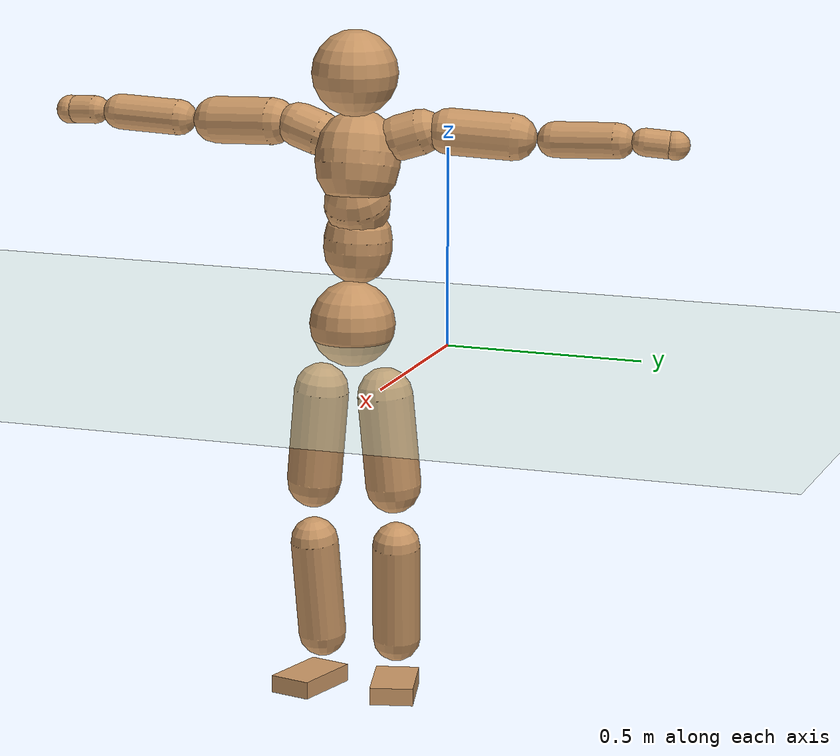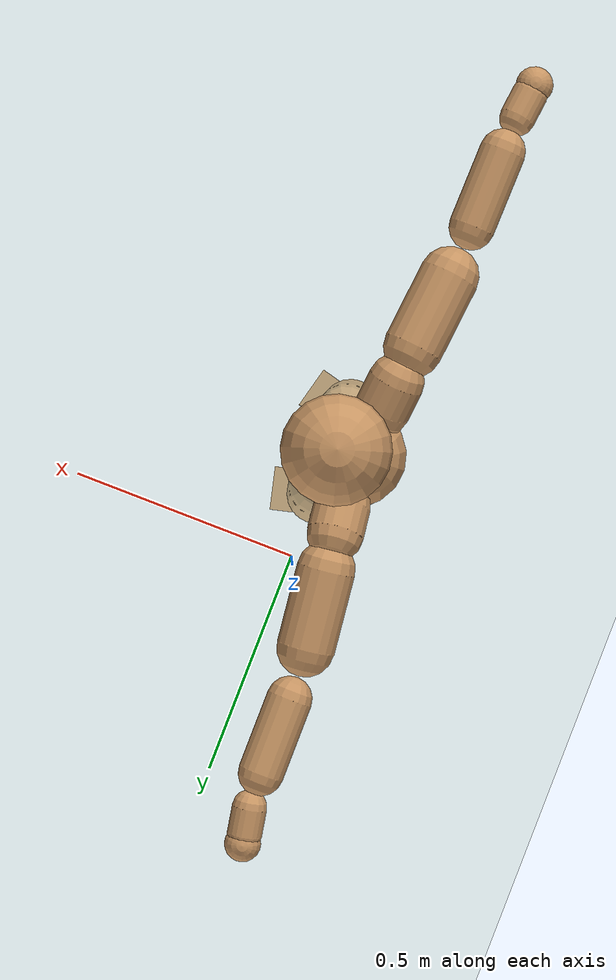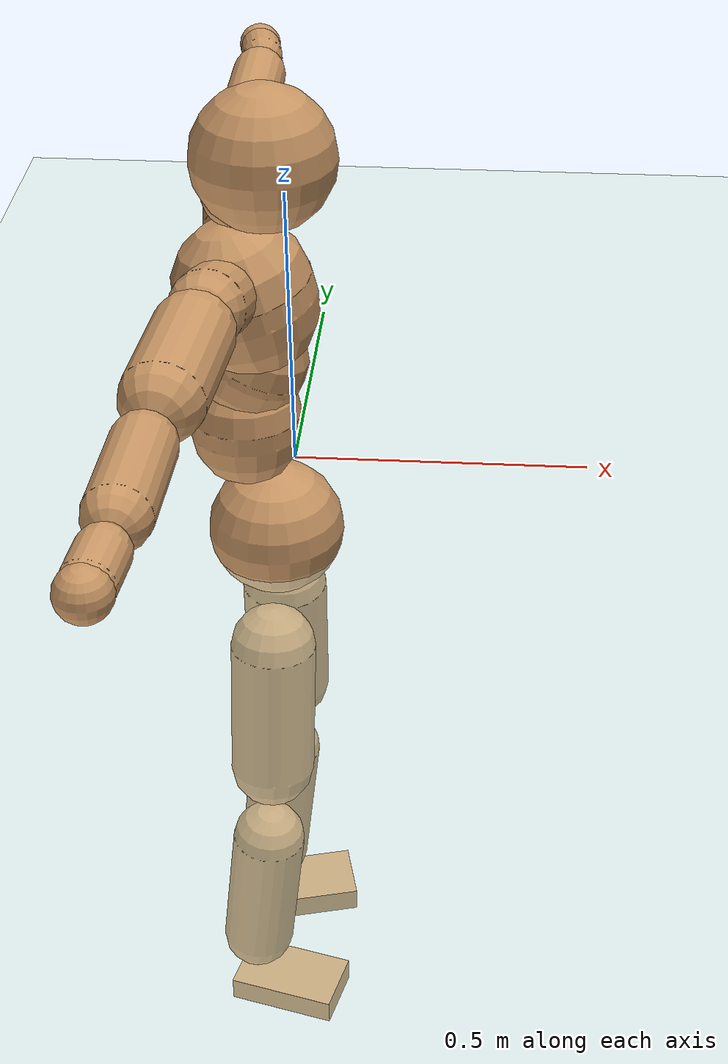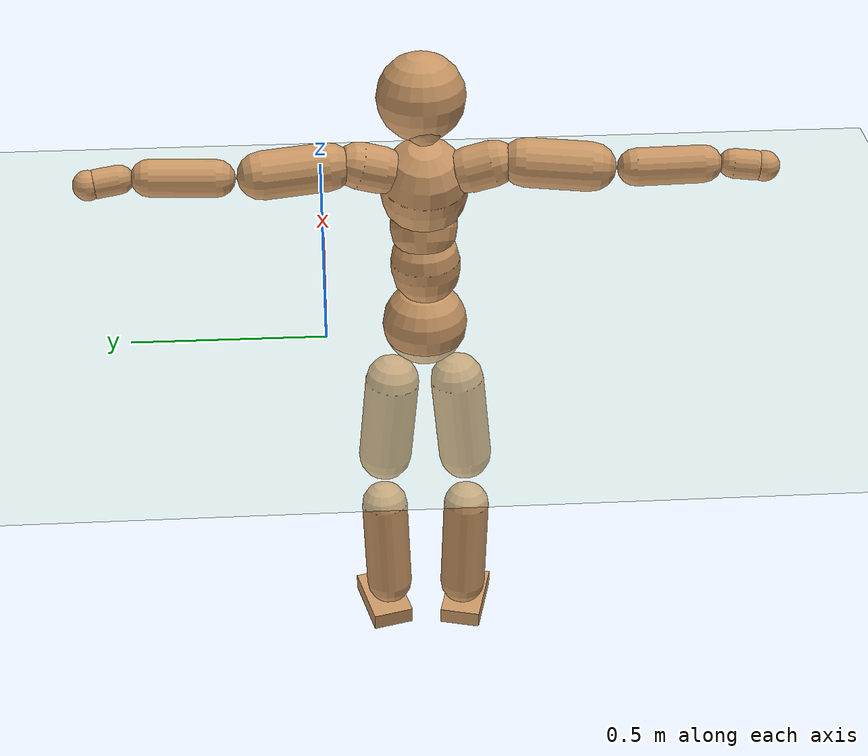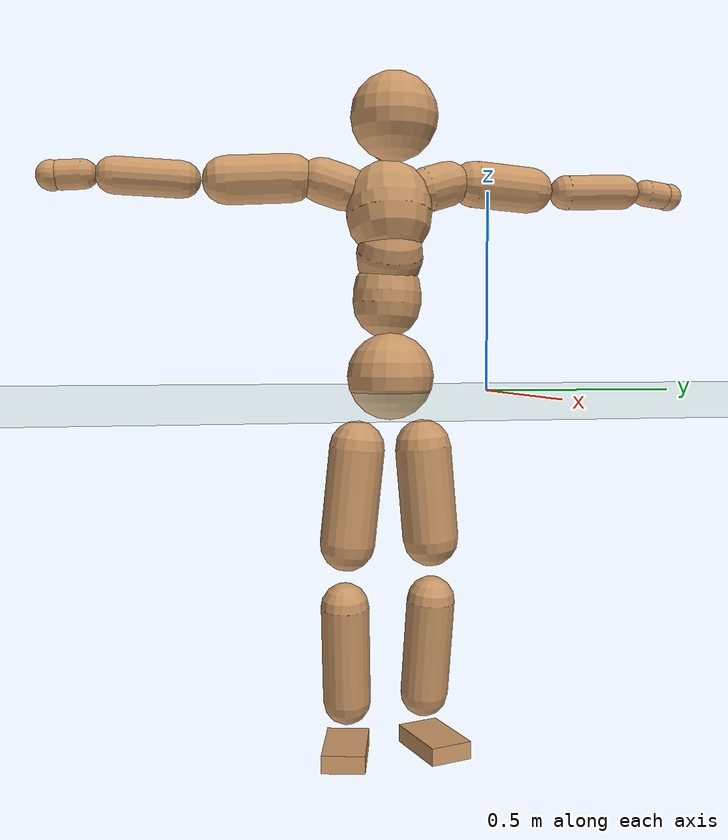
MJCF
<mujoco model="humanoid">
  <compiler coordinate="local"/>
  <default>
    <joint damping="0.0" armature="0.01" stiffness="0.0" limited="true"/>
    <geom conaffinity="1" condim="3" contype="7" margin="0.001" rgba="0.8 0.6 .4 1"/>
  </default>
  <asset>
    <texture type="skybox" builtin="gradient" rgb1=".4 .5 .6" rgb2="0 0 0" width="100" height="100"/>
    <texture builtin="flat" height="1278" mark="cross" markrgb="1 1 1" name="texgeom" random="0.01" rgb1="0.8 0.6 0.4" rgb2="0.8 0.6 0.4" type="cube" width="127"/>
    <texture builtin="checker" height="100" name="texplane" rgb1="0 0 0" rgb2="0.8 0.8 0.8" type="2d" width="100"/>
    <material name="MatPlane" reflectance="0.5" shininess="1" specular="1" texrepeat="60 60" texture="texplane"/>
    <material name="geom" texture="texgeom" texuniform="true"/>
  </asset>
  <worldbody>
    <light cutoff="100" diffuse="1 1 1" dir="-0 0 -1.3" directional="true" exponent="1" pos="0 0 1.3" specular=".1 .1 .1"/>
    <geom conaffinity="1" condim="3" name="floor" pos="0 0 0" rgba="0.8 0.9 0.8 1" size="100 100 .2" type="plane" material="MatPlane"/>
    <body name="Pelvis" pos="-0.0009 -0.2525 0.0372">
      <freejoint name="Pelvis"/>
      <geom type="sphere" contype="1" conaffinity="1" density="500" size="0.1085" pos="0.0000 0.0000 0.0000" name="Pelvis"/>
      <body name="L_Hip" pos="-0.0023 0.0789 -0.1008">
        <joint name="L_Hip_x" type="hinge" pos="0 0 0" axis="1 0 0" stiffness="800" damping="80" armature="0.02" range="-180.0000 180.0000"/>
        <joint name="L_Hip_y" type="hinge" pos="0 0 0" axis="0 1 0" stiffness="800" damping="80" armature="0.02" range="-180.0000 180.0000"/>
        <joint name="L_Hip_z" type="hinge" pos="0 0 0" axis="0 0 1" stiffness="800" damping="80" armature="0.02" range="-180.0000 180.0000"/>
        <geom type="capsule" contype="1" conaffinity="1" density="500" fromto="-0.0014 0.0070 -0.0783 -0.0055 0.0282 -0.3133" size="0.0704" name="L_Hip"/>
        <body name="L_Knee" pos="-0.0068 0.0352 -0.3916">
          <joint name="L_Knee_x" type="hinge" pos="0 0 0" axis="1 0 0" stiffness="800" damping="80" armature="0.02" range="-180.0000 180.0000"/>
          <joint name="L_Knee_y" type="hinge" pos="0 0 0" axis="0 1 0" stiffness="800" damping="80" armature="0.02" range="-180.0000 180.0000"/>
          <joint name="L_Knee_z" type="hinge" pos="0 0 0" axis="0 0 1" stiffness="800" damping="80" armature="0.02" range="-180.0000 180.0000"/>
          <geom type="capsule" contype="1" conaffinity="1" density="500" fromto="-0.0100 -0.0030 -0.0839 -0.0400 -0.0121 -0.3356" size="0.0614" name="L_Knee"/>
          <body name="L_Ankle" pos="-0.0499 -0.0151 -0.4195">
            <joint name="L_Ankle_x" type="hinge" pos="0 0 0" axis="1 0 0" stiffness="800" damping="80" armature="0.02" range="-180.0000 180.0000"/>
            <joint name="L_Ankle_y" type="hinge" pos="0 0 0" axis="0 1 0" stiffness="800" damping="80" armature="0.02" range="-180.0000 180.0000"/>
            <joint name="L_Ankle_z" type="hinge" pos="0 0 0" axis="0 0 1" stiffness="800" damping="80" armature="0.02" range="-180.0000 180.0000"/>
            <geom type="box" contype="1" conaffinity="1" density="500" pos="0.0639 0.0160 -0.0295" size="0.092 0.0551 0.0222" quat="0.9925 0.0000 0.0000 0.1221" name="L_Ankle"/>
            <body name="L_Toe" pos="0.1278 0.0319 -0.0591">
              <joint name="L_Toe_x" type="hinge" pos="0 0 0" axis="1 0 0" stiffness="500" damping="50" armature="0.02" range="-180.0000 180.0000"/>
              <joint name="L_Toe_y" type="hinge" pos="0 0 0" axis="0 1 0" stiffness="500" damping="50" armature="0.02" range="-180.0000 180.0000"/>
              <joint name="L_Toe_z" type="hinge" pos="0 0 0" axis="0 0 1" stiffness="500" damping="50" armature="0.02" range="-180.0000 180.0000"/>
              <geom type="box" contype="1" conaffinity="1" density="500" pos="0.0000 0.0000 0.0299" size="0.0011 0.0026 0.0011" quat="0.9918 0.0000 0.0000 0.1275" name="L_Toe"/>
            </body>
          </body>
        </body>
      </body>
      <body name="R_Hip" pos="-0.0003 -0.0768 -0.0992">
        <joint name="R_Hip_x" type="hinge" pos="0 0 0" axis="1 0 0" stiffness="800" damping="80" armature="0.02" range="-180.0000 180.0000"/>
        <joint name="R_Hip_y" type="hinge" pos="0 0 0" axis="0 1 0" stiffness="800" damping="80" armature="0.02" range="-180.0000 180.0000"/>
        <joint name="R_Hip_z" type="hinge" pos="0 0 0" axis="0 0 1" stiffness="800" damping="80" armature="0.02" range="-180.0000 180.0000"/>
        <geom type="capsule" contype="1" conaffinity="1" density="500" fromto="-0.0025 -0.0077 -0.0801 -0.0101 -0.0310 -0.3205" size="0.0694" name="R_Hip"/>
        <body name="R_Knee" pos="-0.0126 -0.0387 -0.4006">
          <joint name="R_Knee_x" type="hinge" pos="0 0 0" axis="1 0 0" stiffness="800" damping="80" armature="0.02" range="-180.0000 180.0000"/>
          <joint name="R_Knee_y" type="hinge" pos="0 0 0" axis="0 1 0" stiffness="800" damping="80" armature="0.02" range="-180.0000 180.0000"/>
          <joint name="R_Knee_z" type="hinge" pos="0 0 0" axis="0 0 1" stiffness="800" damping="80" armature="0.02" range="-180.0000 180.0000"/>
          <geom type="capsule" contype="1" conaffinity="1" density="500" fromto="-0.0100 0.0033 -0.0842 -0.0400 0.0132 -0.3367" size="0.0612" name="R_Knee"/>
          <body name="R_Ankle" pos="-0.05 0.0165 -0.4209">
            <joint name="R_Ankle_x" type="hinge" pos="0 0 0" axis="1 0 0" stiffness="800" damping="80" armature="0.02" range="-180.0000 180.0000"/>
            <joint name="R_Ankle_y" type="hinge" pos="0 0 0" axis="0 1 0" stiffness="800" damping="80" armature="0.02" range="-180.0000 180.0000"/>
            <joint name="R_Ankle_z" type="hinge" pos="0 0 0" axis="0 0 1" stiffness="800" damping="80" armature="0.02" range="-180.0000 180.0000"/>
            <geom type="box" contype="1" conaffinity="1" density="500" pos="0.0664 -0.0167 -0.0254" size="0.0931 0.0543 0.0223" quat="0.9924 0.0000 0.0000 -0.1228" name="R_Ankle"/>
            <body name="R_Toe" pos="0.1328 -0.0334 -0.0508">
              <joint name="R_Toe_x" type="hinge" pos="0 0 0" axis="1 0 0" stiffness="500" damping="50" armature="0.02" range="-180.0000 180.0000"/>
              <joint name="R_Toe_y" type="hinge" pos="0 0 0" axis="0 1 0" stiffness="500" damping="50" armature="0.02" range="-180.0000 180.0000"/>
              <joint name="R_Toe_z" type="hinge" pos="0 0 0" axis="0 0 1" stiffness="500" damping="50" armature="0.02" range="-180.0000 180.0000"/>
              <geom type="box" contype="1" conaffinity="1" density="500" pos="0.0000 0.0000 0.0270" size="0.0011 0.0026 0.0012" quat="0.9935 0.0000 0.0000 -0.1141" name="R_Toe"/>
            </body>
          </body>
        </body>
      </body>
      <body name="Torso" pos="-0.0386 -0.0026 0.1225">
        <joint name="Torso_x" type="hinge" pos="0 0 0" axis="1 0 0" stiffness="1000" damping="100" armature="0.02" range="-180.0000 180.0000"/>
        <joint name="Torso_y" type="hinge" pos="0 0 0" axis="0 1 0" stiffness="1000" damping="100" armature="0.02" range="-180.0000 180.0000"/>
        <joint name="Torso_z" type="hinge" pos="0 0 0" axis="0 0 1" stiffness="1000" damping="100" armature="0.02" range="-180.0000 180.0000"/>
        <geom type="capsule" contype="1" conaffinity="1" density="500" fromto="-0.0008 0.0039 0.0899 -0.0006 0.0026 0.0600" size="0.0865" name="Torso"/>
        <body name="Spine" pos="-0.0014 0.0066 0.1499">
          <joint name="Spine_x" type="hinge" pos="0 0 0" axis="1 0 0" stiffness="1000" damping="100" armature="0.02" range="-180.0000 180.0000"/>
          <joint name="Spine_y" type="hinge" pos="0 0 0" axis="0 1 0" stiffness="1000" damping="100" armature="0.02" range="-180.0000 180.0000"/>
          <joint name="Spine_z" type="hinge" pos="0 0 0" axis="0 0 1" stiffness="1000" damping="100" armature="0.02" range="-180.0000 180.0000"/>
          <geom type="capsule" contype="1" conaffinity="1" density="500" fromto="0.0177 0.0002 0.0358 0.0118 0.0001 0.0239" size="0.0839" name="Spine"/>
          <body name="Chest" pos="0.0295 0.0003 0.0597">
            <joint name="Chest_x" type="hinge" pos="0 0 0" axis="1 0 0" stiffness="1000" damping="100" armature="0.02" range="-180.0000 180.0000"/>
            <joint name="Chest_y" type="hinge" pos="0 0 0" axis="0 1 0" stiffness="1000" damping="100" armature="0.02" range="-180.0000 180.0000"/>
            <joint name="Chest_z" type="hinge" pos="0 0 0" axis="0 0 1" stiffness="1000" damping="100" armature="0.02" range="-180.0000 180.0000"/>
            <geom type="capsule" contype="1" conaffinity="1" density="500" fromto="-0.0242 -0.0009 0.0994 -0.0161 -0.0006 0.0663" size="0.1073" name="Chest"/>
            <body name="Neck" pos="-0.0419 -0.0013 0.2345">
              <joint name="Neck_x" type="hinge" pos="0 0 0" axis="1 0 0" stiffness="500" damping="50" armature="0.02" range="-180.0000 180.0000"/>
              <joint name="Neck_y" type="hinge" pos="0 0 0" axis="0 1 0" stiffness="500" damping="50" armature="0.02" range="-180.0000 180.0000"/>
              <joint name="Neck_z" type="hinge" pos="0 0 0" axis="0 0 1" stiffness="500" damping="50" armature="0.02" range="-180.0000 180.0000"/>
              <geom type="capsule" contype="1" conaffinity="1" density="500" fromto="0.0114 0.0012 0.0141 0.0454 0.0047 0.0564" size="0.0474" name="Neck"/>
              <body name="Head" pos="0.0568 0.0059 0.0705">
                <joint name="Head_x" type="hinge" pos="0 0 0" axis="1 0 0" stiffness="500" damping="50" armature="0.02" range="-180.0000 180.0000"/>
                <joint name="Head_y" type="hinge" pos="0 0 0" axis="0 1 0" stiffness="500" damping="50" armature="0.02" range="-180.0000 180.0000"/>
                <joint name="Head_z" type="hinge" pos="0 0 0" axis="0 0 1" stiffness="500" damping="50" armature="0.02" range="-180.0000 180.0000"/>
                <geom type="sphere" contype="1" conaffinity="1" density="500" size="0.1085" pos="0.0000 0.0000 0.0000" name="Head"/>
              </body>
            </body>
            <body name="L_Thorax" pos="-0.0366 0.0825 0.1329">
              <joint name="L_Thorax_x" type="hinge" pos="0 0 0" axis="1 0 0" stiffness="500" damping="50" armature="0.02" range="-180.0000 180.0000"/>
              <joint name="L_Thorax_y" type="hinge" pos="0 0 0" axis="0 1 0" stiffness="500" damping="50" armature="0.02" range="-180.0000 180.0000"/>
              <joint name="L_Thorax_z" type="hinge" pos="0 0 0" axis="0 0 1" stiffness="500" damping="50" armature="0.02" range="-180.0000 180.0000"/>
              <geom type="capsule" contype="1" conaffinity="1" density="500" fromto="-0.0022 0.0188 0.0060 -0.0086 0.0751 0.0239" size="0.0572" name="L_Thorax"/>
              <body name="L_Shoulder" pos="-0.0108 0.0939 0.0299">
                <joint name="L_Shoulder_x" type="hinge" pos="0 0 0" axis="1 0 0" stiffness="500" damping="50" armature="0.02" range="-720.0000 720.0000"/>
                <joint name="L_Shoulder_y" type="hinge" pos="0 0 0" axis="0 1 0" stiffness="500" damping="50" armature="0.02" range="-720.0000 720.0000"/>
                <joint name="L_Shoulder_z" type="hinge" pos="0 0 0" axis="0 0 1" stiffness="500" damping="50" armature="0.02" range="-720.0000 720.0000"/>
                <geom type="capsule" contype="1" conaffinity="1" density="500" fromto="-0.0062 0.0533 -0.0027 -0.0249 0.2130 -0.0107" size="0.0587" name="L_Shoulder"/>
                <body name="L_Elbow" pos="-0.0311 0.2663 -0.0134">
                  <joint name="L_Elbow_x" type="hinge" pos="0 0 0" axis="1 0 0" stiffness="500" damping="50" armature="0.02" range="-720.0000 720.0000"/>
                  <joint name="L_Elbow_y" type="hinge" pos="0 0 0" axis="0 1 0" stiffness="500" damping="50" armature="0.02" range="-720.0000 720.0000"/>
                  <joint name="L_Elbow_z" type="hinge" pos="0 0 0" axis="0 0 1" stiffness="500" damping="50" armature="0.02" range="-720.0000 720.0000"/>
                  <geom type="capsule" contype="1" conaffinity="1" density="500" fromto="0.0000 0.0525 0.0020 0.0002 0.2098 0.0080" size="0.0455" name="L_Elbow"/>
                  <body name="L_Wrist" pos="0.0002 0.2623 0.01">
                    <joint name="L_Wrist_x" type="hinge" pos="0 0 0" axis="1 0 0" stiffness="300" damping="30" armature="0.02" range="-180.0000 180.0000"/>
                    <joint name="L_Wrist_y" type="hinge" pos="0 0 0" axis="0 1 0" stiffness="300" damping="30" armature="0.02" range="-180.0000 180.0000"/>
                    <joint name="L_Wrist_z" type="hinge" pos="0 0 0" axis="0 0 1" stiffness="300" damping="30" armature="0.02" range="-180.0000 180.0000"/>
                    <geom type="capsule" contype="1" conaffinity="1" density="500" fromto="-0.0033 0.0182 -0.0016 -0.0133 0.0729 -0.0062" size="0.0349" name="L_Wrist"/>
                    <body name="L_Hand" pos="-0.0167 0.0912 -0.0078">
                      <joint name="L_Hand_x" type="hinge" pos="0 0 0" axis="1 0 0" stiffness="300" damping="30" armature="0.02" range="-180.0000 180.0000"/>
                      <joint name="L_Hand_y" type="hinge" pos="0 0 0" axis="0 1 0" stiffness="300" damping="30" armature="0.02" range="-180.0000 180.0000"/>
                      <joint name="L_Hand_z" type="hinge" pos="0 0 0" axis="0 0 1" stiffness="300" damping="30" armature="0.02" range="-180.0000 180.0000"/>
                      <geom type="sphere" contype="1" conaffinity="1" density="500" size="0.0365" pos="0.0000 0.0000 0.0000" name="L_Hand"/>
                    </body>
                  </body>
                </body>
              </body>
            </body>
            <body name="R_Thorax" pos="-0.0423 -0.0856 0.1295">
              <joint name="R_Thorax_x" type="hinge" pos="0 0 0" axis="1 0 0" stiffness="500" damping="50" armature="0.02" range="-180.0000 180.0000"/>
              <joint name="R_Thorax_y" type="hinge" pos="0 0 0" axis="0 1 0" stiffness="500" damping="50" armature="0.02" range="-180.0000 180.0000"/>
              <joint name="R_Thorax_z" type="hinge" pos="0 0 0" axis="0 0 1" stiffness="500" damping="50" armature="0.02" range="-180.0000 180.0000"/>
              <geom type="capsule" contype="1" conaffinity="1" density="500" fromto="-0.0017 -0.0204 0.0064 -0.0069 -0.0815 0.0256" size="0.0565" name="R_Thorax"/>
              <body name="R_Shoulder" pos="-0.0087 -0.1019 0.032">
                <joint name="R_Shoulder_x" type="hinge" pos="0 0 0" axis="1 0 0" stiffness="500" damping="50" armature="0.02" range="-720.0000 720.0000"/>
                <joint name="R_Shoulder_y" type="hinge" pos="0 0 0" axis="0 1 0" stiffness="500" damping="50" armature="0.02" range="-720.0000 720.0000"/>
                <joint name="R_Shoulder_z" type="hinge" pos="0 0 0" axis="0 0 1" stiffness="500" damping="50" armature="0.02" range="-720.0000 720.0000"/>
                <geom type="capsule" contype="1" conaffinity="1" density="500" fromto="-0.0055 -0.0529 -0.0027 -0.0218 -0.2116 -0.0109" size="0.06" name="R_Shoulder"/>
                <body name="R_Elbow" pos="-0.0273 -0.2644 -0.0136">
                  <joint name="R_Elbow_x" type="hinge" pos="0 0 0" axis="1 0 0" stiffness="500" damping="50" armature="0.02" range="-720.0000 720.0000"/>
                  <joint name="R_Elbow_y" type="hinge" pos="0 0 0" axis="0 1 0" stiffness="500" damping="50" armature="0.02" range="-720.0000 720.0000"/>
                  <joint name="R_Elbow_z" type="hinge" pos="0 0 0" axis="0 0 1" stiffness="500" damping="50" armature="0.02" range="-720.0000 720.0000"/>
                  <geom type="capsule" contype="1" conaffinity="1" density="500" fromto="-0.0010 -0.0537 0.0017 -0.0040 -0.2150 0.0070" size="0.0458" name="R_Elbow"/>
                  <body name="R_Wrist" pos="-0.0049 -0.2687 0.0087">
                    <joint name="R_Wrist_x" type="hinge" pos="0 0 0" axis="1 0 0" stiffness="300" damping="30" armature="0.02" range="-180.0000 180.0000"/>
                    <joint name="R_Wrist_y" type="hinge" pos="0 0 0" axis="0 1 0" stiffness="300" damping="30" armature="0.02" range="-180.0000 180.0000"/>
                    <joint name="R_Wrist_z" type="hinge" pos="0 0 0" axis="0 0 1" stiffness="300" damping="30" armature="0.02" range="-180.0000 180.0000"/>
                    <geom type="capsule" contype="1" conaffinity="1" density="500" fromto="-0.0022 -0.0184 -0.0012 -0.0088 -0.0738 -0.0047" size="0.0359" name="R_Wrist"/>
                    <body name="R_Hand" pos="-0.011 -0.0922 -0.0058">
                      <joint name="R_Hand_x" type="hinge" pos="0 0 0" axis="1 0 0" stiffness="300" damping="30" armature="0.02" range="-180.0000 180.0000"/>
                      <joint name="R_Hand_y" type="hinge" pos="0 0 0" axis="0 1 0" stiffness="300" damping="30" armature="0.02" range="-180.0000 180.0000"/>
                      <joint name="R_Hand_z" type="hinge" pos="0 0 0" axis="0 0 1" stiffness="300" damping="30" armature="0.02" range="-180.0000 180.0000"/>
                      <geom type="sphere" contype="1" conaffinity="1" density="500" size="0.0371" pos="0.0000 0.0000 0.0000" name="R_Hand"/>
                    </body>
                  </body>
                </body>
              </body>
            </body>
          </body>
        </body>
      </body>
    </body>
  </worldbody>
  <actuator>
    <motor name="L_Hip_x" joint="L_Hip_x" gear="500"/>
    <motor name="L_Hip_y" joint="L_Hip_y" gear="500"/>
    <motor name="L_Hip_z" joint="L_Hip_z" gear="500"/>
    <motor name="L_Knee_x" joint="L_Knee_x" gear="500"/>
    <motor name="L_Knee_y" joint="L_Knee_y" gear="500"/>
    <motor name="L_Knee_z" joint="L_Knee_z" gear="500"/>
    <motor name="L_Ankle_x" joint="L_Ankle_x" gear="500"/>
    <motor name="L_Ankle_y" joint="L_Ankle_y" gear="500"/>
    <motor name="L_Ankle_z" joint="L_Ankle_z" gear="500"/>
    <motor name="L_Toe_x" joint="L_Toe_x" gear="500"/>
    <motor name="L_Toe_y" joint="L_Toe_y" gear="500"/>
    <motor name="L_Toe_z" joint="L_Toe_z" gear="500"/>
    <motor name="R_Hip_x" joint="R_Hip_x" gear="500"/>
    <motor name="R_Hip_y" joint="R_Hip_y" gear="500"/>
    <motor name="R_Hip_z" joint="R_Hip_z" gear="500"/>
    <motor name="R_Knee_x" joint="R_Knee_x" gear="500"/>
    <motor name="R_Knee_y" joint="R_Knee_y" gear="500"/>
    <motor name="R_Knee_z" joint="R_Knee_z" gear="500"/>
    <motor name="R_Ankle_x" joint="R_Ankle_x" gear="500"/>
    <motor name="R_Ankle_y" joint="R_Ankle_y" gear="500"/>
    <motor name="R_Ankle_z" joint="R_Ankle_z" gear="500"/>
    <motor name="R_Toe_x" joint="R_Toe_x" gear="500"/>
    <motor name="R_Toe_y" joint="R_Toe_y" gear="500"/>
    <motor name="R_Toe_z" joint="R_Toe_z" gear="500"/>
    <motor name="Torso_x" joint="Torso_x" gear="500"/>
    <motor name="Torso_y" joint="Torso_y" gear="500"/>
    <motor name="Torso_z" joint="Torso_z" gear="500"/>
    <motor name="Spine_x" joint="Spine_x" gear="500"/>
    <motor name="Spine_y" joint="Spine_y" gear="500"/>
    <motor name="Spine_z" joint="Spine_z" gear="500"/>
    <motor name="Chest_x" joint="Chest_x" gear="500"/>
    <motor name="Chest_y" joint="Chest_y" gear="500"/>
    <motor name="Chest_z" joint="Chest_z" gear="500"/>
    <motor name="Neck_x" joint="Neck_x" gear="500"/>
    <motor name="Neck_y" joint="Neck_y" gear="500"/>
    <motor name="Neck_z" joint="Neck_z" gear="500"/>
    <motor name="Head_x" joint="Head_x" gear="500"/>
    <motor name="Head_y" joint="Head_y" gear="500"/>
    <motor name="Head_z" joint="Head_z" gear="500"/>
    <motor name="L_Thorax_x" joint="L_Thorax_x" gear="500"/>
    <motor name="L_Thorax_y" joint="L_Thorax_y" gear="500"/>
    <motor name="L_Thorax_z" joint="L_Thorax_z" gear="500"/>
    <motor name="L_Shoulder_x" joint="L_Shoulder_x" gear="500"/>
    <motor name="L_Shoulder_y" joint="L_Shoulder_y" gear="500"/>
    <motor name="L_Shoulder_z" joint="L_Shoulder_z" gear="500"/>
    <motor name="L_Elbow_x" joint="L_Elbow_x" gear="500"/>
    <motor name="L_Elbow_y" joint="L_Elbow_y" gear="500"/>
    <motor name="L_Elbow_z" joint="L_Elbow_z" gear="500"/>
    <motor name="L_Wrist_x" joint="L_Wrist_x" gear="500"/>
    <motor name="L_Wrist_y" joint="L_Wrist_y" gear="500"/>
    <motor name="L_Wrist_z" joint="L_Wrist_z" gear="500"/>
    <motor name="L_Hand_x" joint="L_Hand_x" gear="500"/>
    <motor name="L_Hand_y" joint="L_Hand_y" gear="500"/>
    <motor name="L_Hand_z" joint="L_Hand_z" gear="500"/>
    <motor name="R_Thorax_x" joint="R_Thorax_x" gear="500"/>
    <motor name="R_Thorax_y" joint="R_Thorax_y" gear="500"/>
    <motor name="R_Thorax_z" joint="R_Thorax_z" gear="500"/>
    <motor name="R_Shoulder_x" joint="R_Shoulder_x" gear="500"/>
    <motor name="R_Shoulder_y" joint="R_Shoulder_y" gear="500"/>
    <motor name="R_Shoulder_z" joint="R_Shoulder_z" gear="500"/>
    <motor name="R_Elbow_x" joint="R_Elbow_x" gear="500"/>
    <motor name="R_Elbow_y" joint="R_Elbow_y" gear="500"/>
    <motor name="R_Elbow_z" joint="R_Elbow_z" gear="500"/>
    <motor name="R_Wrist_x" joint="R_Wrist_x" gear="500"/>
    <motor name="R_Wrist_y" joint="R_Wrist_y" gear="500"/>
    <motor name="R_Wrist_z" joint="R_Wrist_z" gear="500"/>
    <motor name="R_Hand_x" joint="R_Hand_x" gear="500"/>
    <motor name="R_Hand_y" joint="R_Hand_y" gear="500"/>
    <motor name="R_Hand_z" joint="R_Hand_z" gear="500"/>
  </actuator>
  <contact>
    <exclude body1="Torso" body2="Chest"/>
    <exclude body1="Head" body2="Chest"/>
    <exclude body1="R_Knee" body2="R_Toe"/>
    <exclude body1="R_Knee" body2="L_Ankle"/>
    <exclude body1="R_Knee" body2="L_Toe"/>
    <exclude body1="L_Knee" body2="L_Toe"/>
    <exclude body1="L_Knee" body2="R_Ankle"/>
    <exclude body1="L_Knee" body2="R_Toe"/>
    <exclude body1="L_Shoulder" body2="Chest"/>
    <exclude body1="R_Shoulder" body2="Chest"/>
  </contact>
  <sensor/>
  <size njmax="700" nconmax="700"/>
</mujoco>
